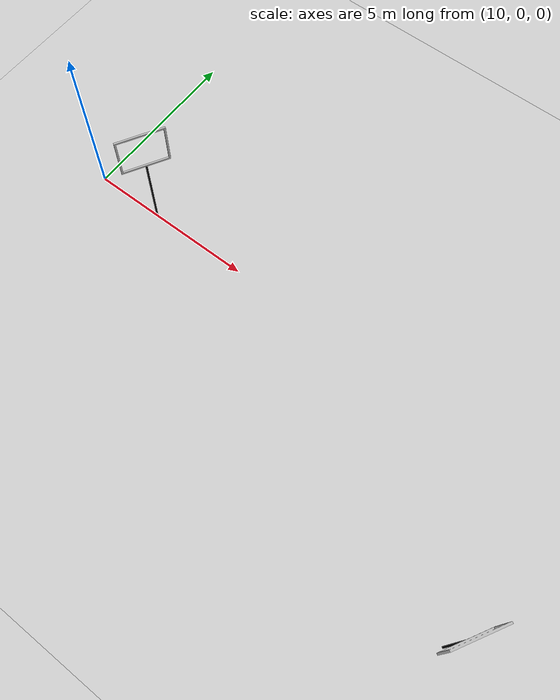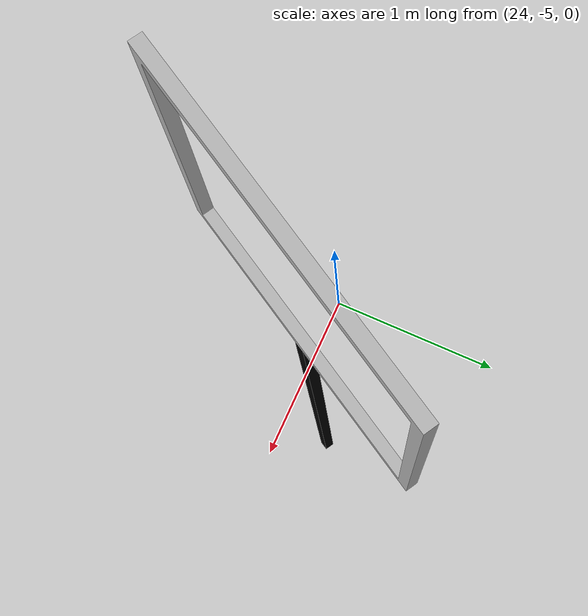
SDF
<sdf version="1.6">
 <world name="default">
  <light name="sun" type="directional">
   <pose>0 0 10 0 -0 0</pose>
   <diffuse>0.8 0.8 0.8 1</diffuse>
   <specular>0.2 0.2 0.2 1</specular>
   <attenuation>
    <range>1000</range>
    <constant>0.9</constant>
    <linear>0.01</linear>
    <quadratic>0.001</quadratic>
   </attenuation>
   <direction>-0.5 0.1 -0.9</direction>
  </light>
  <model name="ground_plane">
   <static>1</static>
   <link name="link">
    <collision name="collision">
     <geometry><plane><normal>0 0 1</normal><size>100 100</size></plane></geometry>
     <surface><friction><ode><mu>100</mu><mu2>50</mu2></ode></friction></surface>
    </collision>
    <visual name="visual">
     <cast_shadows>0</cast_shadows>
     <geometry><plane><normal>0 0 1</normal><size>100 100</size></plane></geometry>
     <material>
      <script><uri>file://media/materials/scripts/gazebo.material</uri><name>Gazebo/Grey</name></script>
     </material>
    </visual>
   </link>
  </model>
  <gravity>0 0 -9.8</gravity>
  <magnetic_field>6e-06 2.3e-05 -4.2e-05</magnetic_field>
  <atmosphere type="adiabatic"/>
  <physics name="default_physics" default="0" type="ode">
   <max_step_size>0.001</max_step_size>
   <real_time_factor>1</real_time_factor>
   <real_time_update_rate>1000</real_time_update_rate>
  </physics>
  <scene><ambient>0.4 0.4 0.4 1</ambient><background>0.7 0.7 0.7 1</background><shadows>1</shadows></scene>
  <spherical_coordinates>
   <surface_model>EARTH_WGS84</surface_model>
   <latitude_deg>0</latitude_deg>
   <longitude_deg>0</longitude_deg>
   <elevation>0</elevation>
   <heading_deg>0</heading_deg>
  </spherical_coordinates>
  <model name="iROS2016 Track">
   <link name="gate_08">
    <pose>12.5 -2.8 0 0 -0 1.0472</pose>
    <visual name="visual">
     <geometry>
      <mesh><uri>/home/adi/Aerial_Robotics/FPV-Drone-Racing/fpv_ws/src/fpvbot_discription/meshes/08.dae</uri></mesh>
     </geometry>
    </visual>
   </link>
   <static>1</static>
   <pose>-0.453797 2.78922 0 0 -0 0</pose>
  </model>
  <model name="iROS2016 Track_0">
   <link name="gate_08">
    <pose>12.5 -2.8 0 0 -0 1.0472</pose>
    <visual name="visual">
     <geometry>
      <mesh><uri>/home/adi/Aerial_Robotics/FPV-Drone-Racing/fpv_ws/src/fpvbot_discription/meshes/08.dae</uri></mesh>
     </geometry>
    </visual>
   </link>
   <static>1</static>
   <pose>12.3143 -1.913 0 0 -0 0</pose>
  </model>
 </world>
</sdf>
